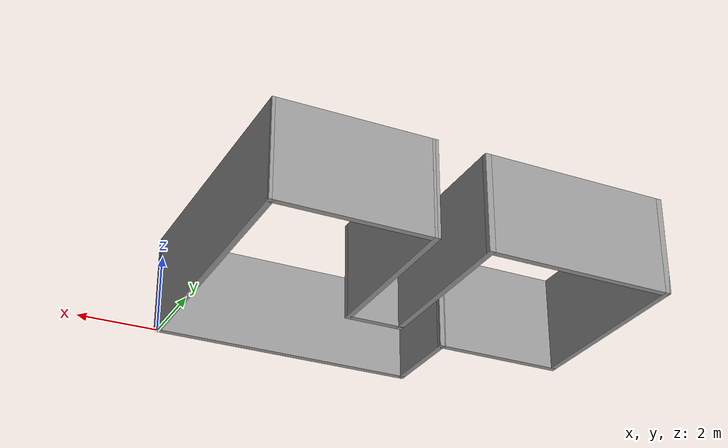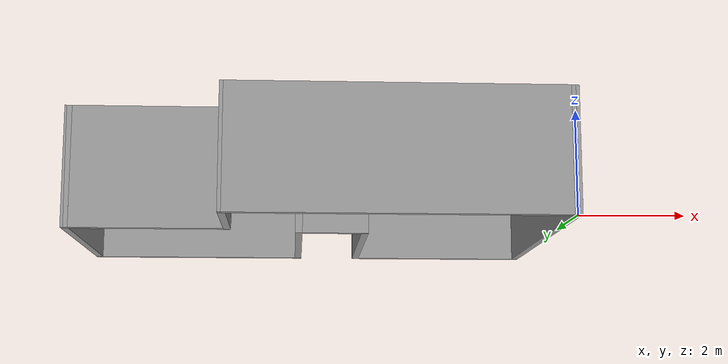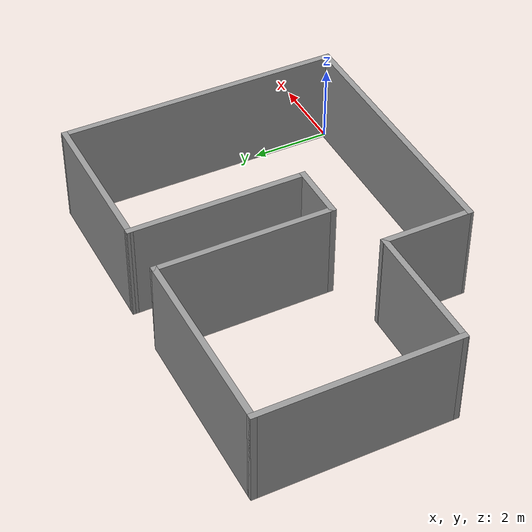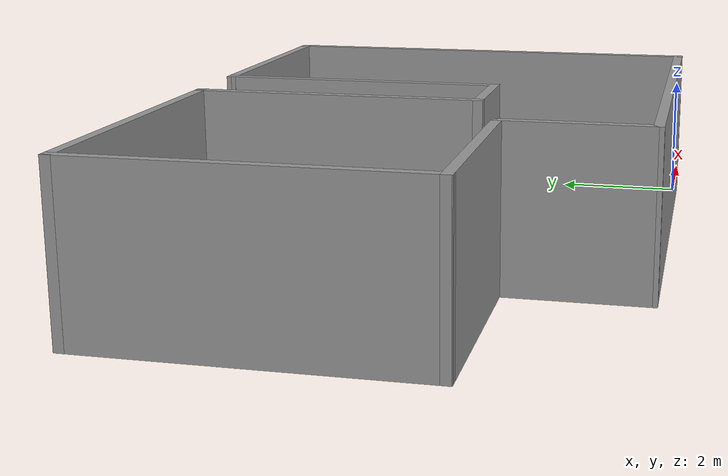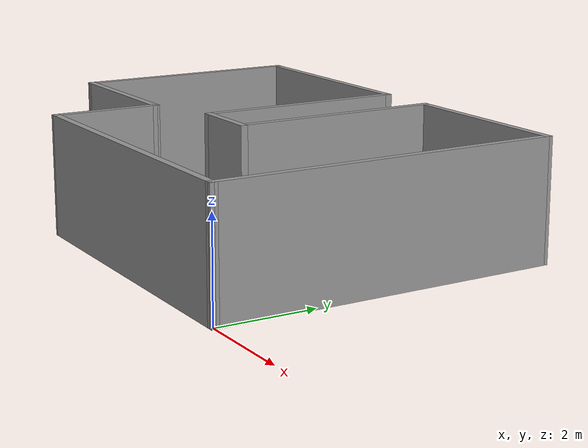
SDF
<?xml version='1.0'?>
<sdf version='1.6'>
  <model name='Measured_Stage'>
    <pose frame=''>-4.94994 3.53103 0 0 -0 0</pose>
    <link name='Wall_0'>
      <collision name='Wall_0_Collision'>
        <geometry>
          <box>
            <size>7.2 0.15 2.5</size>
          </box>
        </geometry>
        <pose frame=''>0 0 1.25 0 -0 0</pose>
      </collision>
      <visual name='Wall_0_Visual'>
        <pose frame=''>0 0 1.25 0 -0 0</pose>
        <geometry>
          <box>
            <size>7.2 0.15 2.5</size>
          </box>
        </geometry>
        <material>
          <script>
            <uri>file://media/materials/scripts/gazebo.material</uri>
            <name>Gazebo/Grey</name>
          </script>
          <ambient>1 1 1 1</ambient>
        </material>
        <meta>
          <layer>0</layer>
        </meta>
      </visual>
      <pose frame=''>4.94994 -0.006028 0 0 -0 1.5708</pose>
    </link>
    <link name='Wall_10'>
      <collision name='Wall_10_Collision'>
        <geometry>
          <box>
            <size>4.5 0.15 2.5</size>
          </box>
        </geometry>
        <pose frame=''>0 0 1.25 0 -0 0</pose>
      </collision>
      <visual name='Wall_10_Visual'>
        <pose frame=''>0 0 1.25 0 -0 0</pose>
        <geometry>
          <box>
            <size>4.5 0.15 2.5</size>
          </box>
        </geometry>
        <material>
          <script>
            <uri>file://media/materials/scripts/gazebo.material</uri>
            <name>Gazebo/Grey</name>
          </script>
          <ambient>1 1 1 1</ambient>
        </material>
        <meta>
          <layer>0</layer>
        </meta>
      </visual>
      <pose frame=''>1.09995 1.35598 0 0 -0 -1.5708</pose>
    </link>
    <link name='Wall_12'>
      <collision name='Wall_12_Collision'>
        <geometry>
          <box>
            <size>4.488 0.15 2.5</size>
          </box>
        </geometry>
        <pose frame=''>0 0 1.25 0 -0 0</pose>
      </collision>
      <visual name='Wall_12_Visual'>
        <pose frame=''>0 0 1.25 0 -0 0</pose>
        <geometry>
          <box>
            <size>4.488 0.15 2.5</size>
          </box>
        </geometry>
        <material>
          <script>
            <uri>file://media/materials/scripts/gazebo.material</uri>
            <name>Gazebo/Grey</name>
          </script>
          <ambient>1 1 1 1</ambient>
        </material>
        <meta>
          <layer>0</layer>
        </meta>
      </visual>
      <pose frame=''>-0.266063 1.34997 0 0 -0 1.5708</pose>
    </link>
    <link name='Wall_16'>
      <collision name='Wall_16_Collision'>
        <geometry>
          <box>
            <size>4 0.15 2.5</size>
          </box>
        </geometry>
        <pose frame=''>0 0 1.25 0 -0 0</pose>
      </collision>
      <visual name='Wall_16_Visual'>
        <pose frame=''>0 0 1.25 0 -0 0</pose>
        <geometry>
          <box>
            <size>4 0.15 2.5</size>
          </box>
        </geometry>
        <material>
          <script>
            <uri>file://media/materials/scripts/gazebo.material</uri>
            <name>Gazebo/Grey</name>
          </script>
          <ambient>1 1 1 1</ambient>
        </material>
        <meta>
          <layer>0</layer>
        </meta>
      </visual>
      <pose frame=''>3.02495 3.52498 0 0 -0 3.13847</pose>
    </link>
    <link name='Wall_18'>
      <collision name='Wall_18_Collision'>
        <geometry>
          <box>
            <size>1.51642 0.15 2.5</size>
          </box>
        </geometry>
        <pose frame=''>0 0 1.25 0 -0 0</pose>
      </collision>
      <visual name='Wall_18_Visual'>
        <pose frame=''>0 0 1.25 0 -0 0</pose>
        <geometry>
          <box>
            <size>1.51642 0.15 2.5</size>
          </box>
        </geometry>
        <material>
          <script>
            <uri>file://media/materials/scripts/gazebo.material</uri>
            <name>Gazebo/Grey</name>
          </script>
          <ambient>1 1 1 1</ambient>
        </material>
        <meta>
          <layer>0</layer>
        </meta>
      </visual>
      <pose frame=''>0.416937 -0.819028 0 0 -0 0</pose>
    </link>
    <link name='Wall_2'>
      <collision name='Wall_2_Collision'>
        <geometry>
          <box>
            <size>6.81 0.15 2.5</size>
          </box>
        </geometry>
        <pose frame=''>0 0 1.25 0 -0 0</pose>
      </collision>
      <visual name='Wall_2_Visual'>
        <pose frame=''>0 0 1.25 0 -0 0</pose>
        <geometry>
          <box>
            <size>6.81 0.15 2.5</size>
          </box>
        </geometry>
        <material>
          <script>
            <uri>file://media/materials/scripts/gazebo.material</uri>
            <name>Gazebo/Grey</name>
          </script>
          <ambient>1 1 1 1</ambient>
        </material>
        <meta>
          <layer>0</layer>
        </meta>
      </visual>
      <pose frame=''>1.61994 -3.52228 0 0 -0 3.13897</pose>
    </link>
    <link name='Wall_20'>
      <collision name='Wall_20_Collision'>
        <geometry>
          <box>
            <size>4.83422 0.15 2.5</size>
          </box>
        </geometry>
        <pose frame=''>0 0 1.25 0 -0 0</pose>
      </collision>
      <visual name='Wall_20_Visual'>
        <pose frame=''>0 0 1.25 0 -0 0</pose>
        <geometry>
          <box>
            <size>4.83422 0.15 2.5</size>
          </box>
        </geometry>
        <material>
          <script>
            <uri>file://media/materials/scripts/gazebo.material</uri>
            <name>Gazebo/Grey</name>
          </script>
          <ambient>1 1 1 1</ambient>
        </material>
        <meta>
          <layer>0</layer>
        </meta>
      </visual>
      <pose frame=''>-2.60806 3.51897 0 0 -0 0</pose>
    </link>
    <link name='Wall_4'>
      <collision name='Wall_4_Collision'>
        <geometry>
          <box>
            <size>2.32 0.15 2.5</size>
          </box>
        </geometry>
        <pose frame=''>0 0 1.25 0 -0 0</pose>
      </collision>
      <visual name='Wall_4_Visual'>
        <pose frame=''>0 0 1.25 0 -0 0</pose>
        <geometry>
          <box>
            <size>2.32 0.15 2.5</size>
          </box>
        </geometry>
        <material>
          <script>
            <uri>file://media/materials/scripts/gazebo.material</uri>
            <name>Gazebo/Grey</name>
          </script>
          <ambient>1 1 1 1</ambient>
        </material>
        <meta>
          <layer>0</layer>
        </meta>
      </visual>
      <pose frame=''>-1.71006 -2.42854 0 0 -0 1.5708</pose>
    </link>
    <link name='Wall_5'>
      <collision name='Wall_5_Collision'>
        <geometry>
          <box>
            <size>3.39 0.15 2.5</size>
          </box>
        </geometry>
        <pose frame=''>0 0 1.25 0 -0 0</pose>
      </collision>
      <visual name='Wall_5_Visual'>
        <pose frame=''>0 0 1.25 0 -0 0</pose>
        <geometry>
          <box>
            <size>3.39 0.15 2.5</size>
          </box>
        </geometry>
        <material>
          <script>
            <uri>file://media/materials/scripts/gazebo.material</uri>
            <name>Gazebo/Grey</name>
          </script>
          <ambient>1 1 1 1</ambient>
        </material>
        <meta>
          <layer>0</layer>
        </meta>
      </visual>
      <pose frame=''>-3.33006 -1.34378 0 0 -0 -3.14144</pose>
    </link>
    <link name='Wall_7'>
      <collision name='Wall_7_Collision'>
        <geometry>
          <box>
            <size>5.013 0.15 2.5</size>
          </box>
        </geometry>
        <pose frame=''>0 0 1.25 0 -0 0</pose>
      </collision>
      <visual name='Wall_7_Visual'>
        <pose frame=''>0 0 1.25 0 -0 0</pose>
        <geometry>
          <box>
            <size>5.013 0.15 2.5</size>
          </box>
        </geometry>
        <material>
          <script>
            <uri>file://media/materials/scripts/gazebo.material</uri>
            <name>Gazebo/Grey</name>
          </script>
          <ambient>1 1 1 1</ambient>
        </material>
        <meta>
          <layer>0</layer>
        </meta>
      </visual>
      <pose frame=''>-4.95006 1.08747 0 0 -0 1.5708</pose>
    </link>
    <static>1</static>
  </model>
</sdf>
